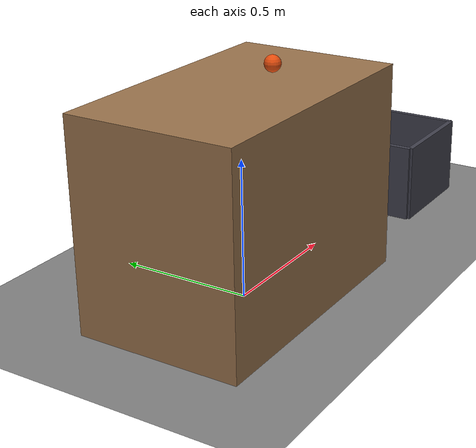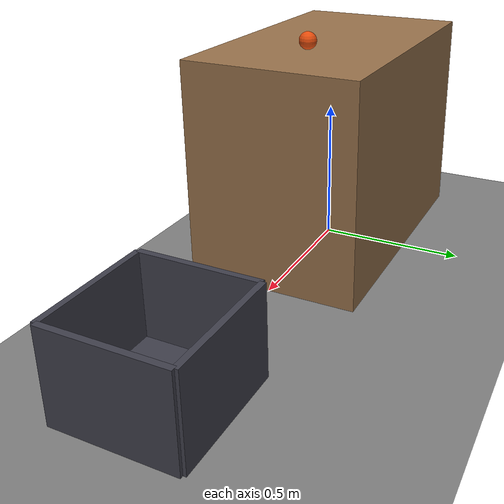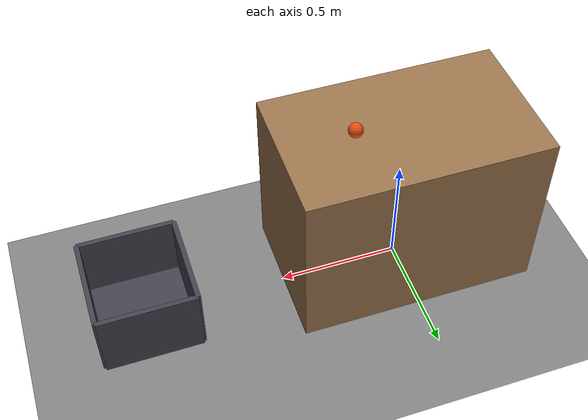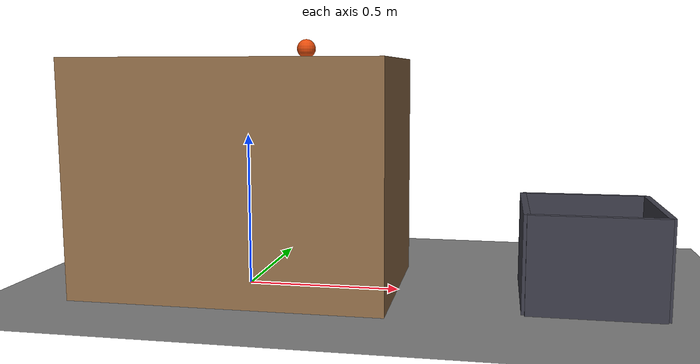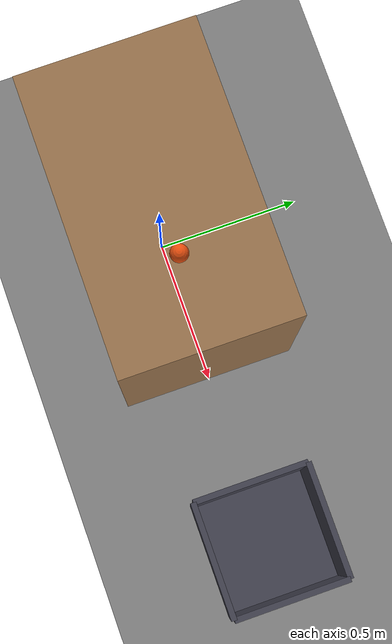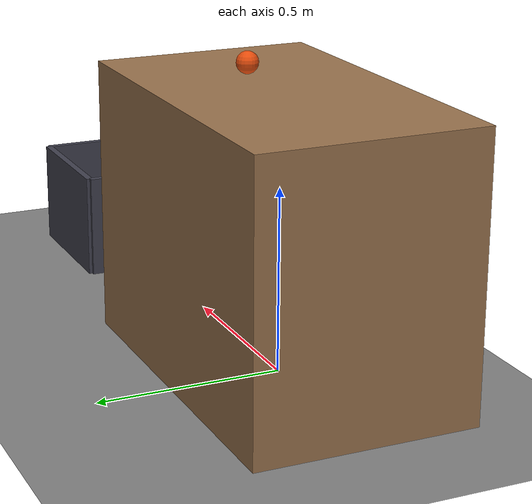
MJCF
<mujoco model="ball_off_the_table_into_a_bucket">
  <compiler angle="radian"/>
  <option timestep="0.002"/>
  <worldbody>
    <geom name="floor" type="plane" size="6 6 0.1" friction="0.8 0.005 0.002"/>
    <body name="table">
      <geom name="table" type="box" pos="0 0 0.375" size="0.5 0.3 0.375" friction="0.8 0.001 0.0002" rgba="0.6 0.45 0.3 1"/>
    </body>
    <body name="bucket">
      <geom name="bucket_base" type="box" pos="1.1 0 0.01" size="0.2 0.2 0.01" friction="0.8 0.01 0.01" solref="0.01 1" rgba="0.25 0.25 0.3 1"/>
      <geom name="bucket_near_wall" type="box" pos="0.9 0 0.15" size="0.01 0.2 0.15" friction="0.8 0.01 0.01" solref="0.01 1" rgba="0.25 0.25 0.3 1"/>
      <geom name="bucket_far_wall" type="box" pos="1.3 0 0.15" size="0.01 0.2 0.15" friction="0.8 0.01 0.01" solref="0.01 1" rgba="0.25 0.25 0.3 1"/>
      <geom name="bucket_left_wall" type="box" pos="1.1 0.2 0.15" size="0.2 0.01 0.15" friction="0.8 0.01 0.01" solref="0.01 1" rgba="0.25 0.25 0.3 1"/>
      <geom name="bucket_right_wall" type="box" pos="1.1 -0.2 0.15" size="0.2 0.01 0.15" friction="0.8 0.01 0.01" solref="0.01 1" rgba="0.25 0.25 0.3 1"/>
    </body>
    <body name="ball" pos="0.2 0 0.78">
      <freejoint/>
      <geom name="ball" type="sphere" pos="0 0 0" size="0.03" mass="0.1" condim="6" friction="0.8 0.001 0.0002" solref="0.01 1" rgba="0.9 0.3 0.05 1"/>
    </body>
  </worldbody>
  <keyframe>
    <key name="start" qpos="0.2 0 0.78 1 0 0 0" qvel="1.56 0 0 0 52 0"/>
  </keyframe>
</mujoco>
